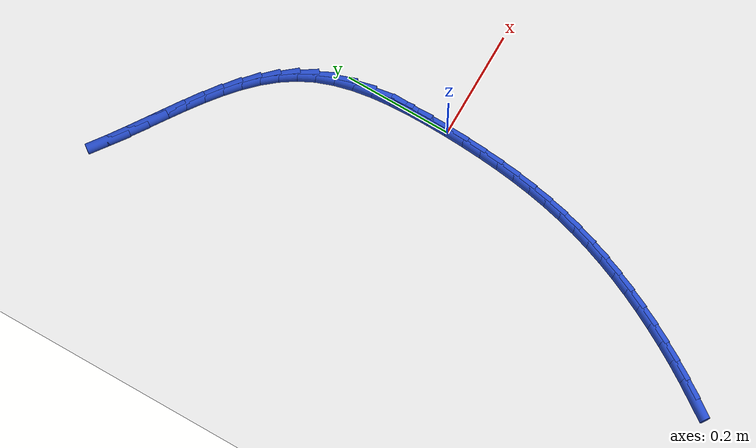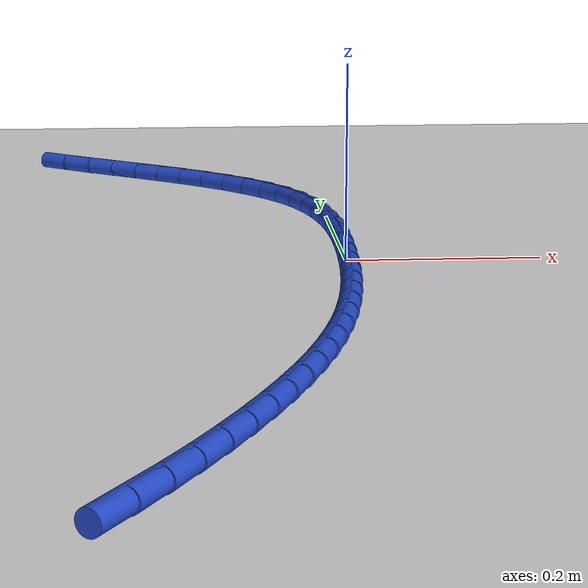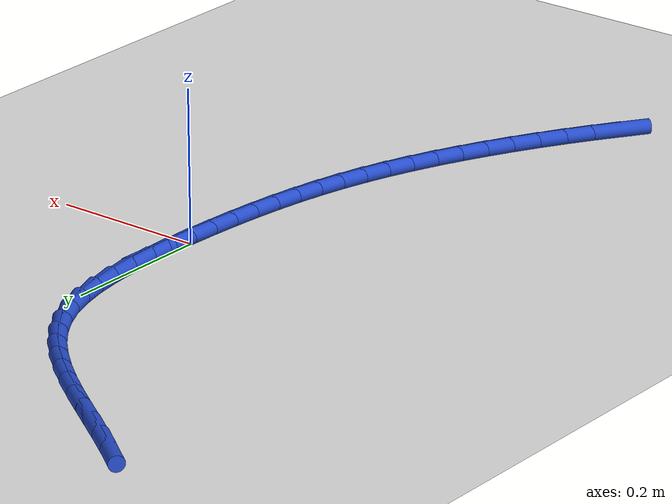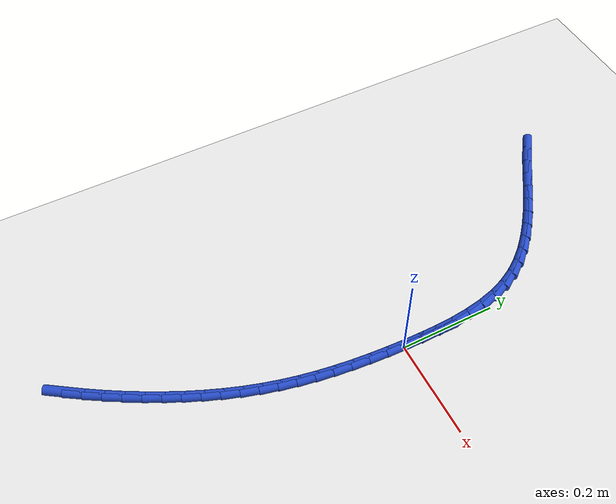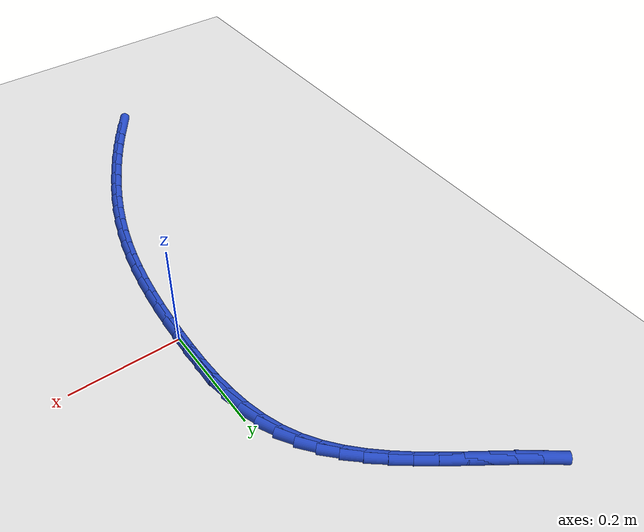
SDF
<sdf version="1.6">
 <world name="default">
  <model name="ground_plane">
   <static>1</static>
   <link name="link">
    <collision name="collision">
     <geometry><plane><normal>0 0 1</normal><size>100 100</size></plane></geometry>
     <surface><friction><ode><mu>100</mu><mu2>50</mu2></ode></friction></surface>
    </collision>
    <visual name="visual">
     <cast_shadows>0</cast_shadows>
     <geometry><plane><normal>0 0 1</normal><size>100 100</size></plane></geometry>
     <material>
      <script><uri>file://media/materials/scripts/gazebo.material</uri><name>Gazebo/WhiteGlow</name></script>
     </material>
    </visual>
   </link>
  </model>
  <model name="line">
   <link name="link_0">
    <pose>-5.421010862427522e-18 2.0816681711721685e-17 0.01 0 1.57 1.5466712468176664</pose>
    <collision name="collision">
     <geometry><cylinder><radius>0.01</radius><length>0.08</length></cylinder></geometry>
    </collision>
    <visual name="visual">
     <material>
      <script><name>Gazebo/Blue</name><uri>file://media/materials/scripts/gazebo.material</uri></script>
     </material>
     <geometry><cylinder><radius>0.01</radius><length>0.08</length></cylinder></geometry>
    </visual>
   </link>
   <link name="link_1">
    <pose>0.0009033576102911798 0.03743748609744156 0.01 0 1.57 -1.566262863615076</pose>
    <collision name="collision">
     <geometry><cylinder><radius>0.01</radius><length>0.08</length></cylinder></geometry>
    </collision>
    <visual name="visual">
     <material>
      <script><name>Gazebo/Blue</name><uri>file://media/materials/scripts/gazebo.material</uri></script>
     </material>
     <geometry><cylinder><radius>0.01</radius><length>0.08</length></cylinder></geometry>
    </visual>
   </link>
   <link name="link_2">
    <pose>0.000733105015284847 0.07499187264290075 0.01 0 1.57 -1.5266369364941925</pose>
    <collision name="collision">
     <geometry><cylinder><radius>0.01</radius><length>0.08</length></cylinder></geometry>
    </collision>
    <visual name="visual">
     <material>
      <script><name>Gazebo/Blue</name><uri>file://media/materials/scripts/gazebo.material</uri></script>
     </material>
     <geometry><cylinder><radius>0.01</radius><length>0.08</length></cylinder></geometry>
    </visual>
   </link>
   <link name="link_3">
    <pose>-0.0009137528515199373 0.11226112003020318 0.01 0 1.57 -1.4746947276949234</pose>
    <collision name="collision">
     <geometry><cylinder><radius>0.01</radius><length>0.08</length></cylinder></geometry>
    </collision>
    <visual name="visual">
     <material>
      <script><name>Gazebo/Blue</name><uri>file://media/materials/scripts/gazebo.material</uri></script>
     </material>
     <geometry><cylinder><radius>0.01</radius><length>0.08</length></cylinder></geometry>
    </visual>
   </link>
   <link name="link_4">
    <pose>-0.004440211056624108 0.14884318865317428 0.01 0 1.57 -1.4085664133884683</pose>
    <collision name="collision">
     <geometry><cylinder><radius>0.01</radius><length>0.08</length></cylinder></geometry>
    </collision>
    <visual name="visual">
     <material>
      <script><name>Gazebo/Blue</name><uri>file://media/materials/scripts/gazebo.material</uri></script>
     </material>
     <geometry><cylinder><radius>0.01</radius><length>0.08</length></cylinder></geometry>
    </visual>
   </link>
   <link name="link_5">
    <pose>-0.01024926466652859 0.18433603890563954 0.01 0 1.57 -1.3259769424873311</pose>
    <collision name="collision">
     <geometry><cylinder><radius>0.01</radius><length>0.08</length></cylinder></geometry>
    </collision>
    <visual name="visual">
     <material>
      <script><name>Gazebo/Blue</name><uri>file://media/materials/scripts/gazebo.material</uri></script>
     </material>
     <geometry><cylinder><radius>0.01</radius><length>0.08</length></cylinder></geometry>
    </visual>
   </link>
   <link name="link_6">
    <pose>-0.018743908747734336 0.21833763118142463 0.01 0 1.57 -1.2245724802127989</pose>
    <collision name="collision">
     <geometry><cylinder><radius>0.01</radius><length>0.08</length></cylinder></geometry>
    </collision>
    <visual name="visual">
     <material>
      <script><name>Gazebo/Blue</name><uri>file://media/materials/scripts/gazebo.material</uri></script>
     </material>
     <geometry><cylinder><radius>0.01</radius><length>0.08</length></cylinder></geometry>
    </visual>
   </link>
   <link name="link_7">
    <pose>-0.030327138366742258 0.250445925874355 0.01 0 1.57 -1.1046083328242908</pose>
    <collision name="collision">
     <geometry><cylinder><radius>0.01</radius><length>0.08</length></cylinder></geometry>
    </collision>
    <visual name="visual">
     <material>
      <script><name>Gazebo/Blue</name><uri>file://media/materials/scripts/gazebo.material</uri></script>
     </material>
     <geometry><cylinder><radius>0.01</radius><length>0.08</length></cylinder></geometry>
    </visual>
   </link>
   <link name="link_8">
    <pose>-0.04535105117831094 0.28030388315494703 0.01 0 1.57 -0.9855586680049778</pose>
    <collision name="collision">
     <geometry><cylinder><radius>0.01</radius><length>0.08</length></cylinder></geometry>
    </collision>
    <visual name="visual">
     <material>
      <script><name>Gazebo/Blue</name><uri>file://media/materials/scripts/gazebo.material</uri></script>
     </material>
     <geometry><cylinder><radius>0.01</radius><length>0.08</length></cylinder></geometry>
    </visual>
   </link>
   <link name="link_9">
    <pose>-0.06368960808677686 0.30797719681140423 0.01 0 1.57 -0.8811846184135992</pose>
    <collision name="collision">
     <geometry><cylinder><radius>0.01</radius><length>0.08</length></cylinder></geometry>
    </collision>
    <visual name="visual">
     <material>
      <script><name>Gazebo/Blue</name><uri>file://media/materials/scripts/gazebo.material</uri></script>
     </material>
     <geometry><cylinder><radius>0.01</radius><length>0.08</length></cylinder></geometry>
    </visual>
   </link>
   <link name="link_10">
    <pose>-0.08495484616576891 0.3337631345664068 0.01 0 1.57 -0.793667329842581</pose>
    <collision name="collision">
     <geometry><cylinder><radius>0.01</radius><length>0.08</length></cylinder></geometry>
    </collision>
    <visual name="visual">
     <material>
      <script><name>Gazebo/Blue</name><uri>file://media/materials/scripts/gazebo.material</uri></script>
     </material>
     <geometry><cylinder><radius>0.01</radius><length>0.08</length></cylinder></geometry>
    </visual>
   </link>
   <link name="link_11">
    <pose>-0.10875612143606747 0.3579613345338865 0.01 0 1.57 -0.723325552223975</pose>
    <collision name="collision">
     <geometry><cylinder><radius>0.01</radius><length>0.08</length></cylinder></geometry>
    </collision>
    <visual name="visual">
     <material>
      <script><name>Gazebo/Blue</name><uri>file://media/materials/scripts/gazebo.material</uri></script>
     </material>
     <geometry><cylinder><radius>0.01</radius><length>0.08</length></cylinder></geometry>
    </visual>
   </link>
   <link name="link_12">
    <pose>-0.13470278991845278 0.3808714348277745 0.01 0 1.57 -0.6694469561313541</pose>
    <collision name="collision">
     <geometry><cylinder><radius>0.01</radius><length>0.08</length></cylinder></geometry>
    </collision>
    <visual name="visual">
     <material>
      <script><name>Gazebo/Blue</name><uri>file://media/materials/scripts/gazebo.material</uri></script>
     </material>
     <geometry><cylinder><radius>0.01</radius><length>0.08</length></cylinder></geometry>
    </visual>
   </link>
   <link name="link_13">
    <pose>-0.16240420763370503 0.4027930735620022 0.01 0 1.57 -0.6309139708328828</pose>
    <collision name="collision">
     <geometry><cylinder><radius>0.01</radius><length>0.08</length></cylinder></geometry>
    </collision>
    <visual name="visual">
     <material>
      <script><name>Gazebo/Blue</name><uri>file://media/materials/scripts/gazebo.material</uri></script>
     </material>
     <geometry><cylinder><radius>0.01</radius><length>0.08</length></cylinder></geometry>
    </visual>
   </link>
   <link name="link_14">
    <pose>-0.19146973060260464 0.424025888850501 0.01 0 1.57 -0.6066107967727233</pose>
    <collision name="collision">
     <geometry><cylinder><radius>0.01</radius><length>0.08</length></cylinder></geometry>
    </collision>
    <visual name="visual">
     <material>
      <script><name>Gazebo/Blue</name><uri>file://media/materials/scripts/gazebo.material</uri></script>
     </material>
     <geometry><cylinder><radius>0.01</radius><length>0.08</length></cylinder></geometry>
    </visual>
   </link>
   <link name="link_15">
    <pose>-0.2215087148459318 0.4448695188072022 0.01 0 1.57 -0.5956399887724423</pose>
    <collision name="collision">
     <geometry><cylinder><radius>0.01</radius><length>0.08</length></cylinder></geometry>
    </collision>
    <visual name="visual">
     <material>
      <script><name>Gazebo/Blue</name><uri>file://media/materials/scripts/gazebo.material</uri></script>
     </material>
     <geometry><cylinder><radius>0.01</radius><length>0.08</length></cylinder></geometry>
    </visual>
   </link>
   <link name="link_16">
    <pose>-0.25213051638446693 0.46562360154603744 0.01 0 1.57 -0.5974134192479725</pose>
    <collision name="collision">
     <geometry><cylinder><radius>0.01</radius><length>0.08</length></cylinder></geometry>
    </collision>
    <visual name="visual">
     <material>
      <script><name>Gazebo/Blue</name><uri>file://media/materials/scripts/gazebo.material</uri></script>
     </material>
     <geometry><cylinder><radius>0.01</radius><length>0.08</length></cylinder></geometry>
    </visual>
   </link>
   <link name="link_17">
    <pose>-0.2829444912389901 0.4865877751809377 0.01 0 1.57 -0.6116690597869092</pose>
    <collision name="collision">
     <geometry><cylinder><radius>0.01</radius><length>0.08</length></cylinder></geometry>
    </collision>
    <visual name="visual">
     <material>
      <script><name>Gazebo/Blue</name><uri>file://media/materials/scripts/gazebo.material</uri></script>
     </material>
     <geometry><cylinder><radius>0.01</radius><length>0.08</length></cylinder></geometry>
    </visual>
   </link>
   <link name="link_18">
    <pose>-0.31355999543028185 0.5080616778258348 0.01 0 1.57 -0.6384406416458243</pose>
    <collision name="collision">
     <geometry><cylinder><radius>0.01</radius><length>0.08</length></cylinder></geometry>
    </collision>
    <visual name="visual">
     <material>
      <script><name>Gazebo/Blue</name><uri>file://media/materials/scripts/gazebo.material</uri></script>
     </material>
     <geometry><cylinder><radius>0.01</radius><length>0.08</length></cylinder></geometry>
    </visual>
   </link>
   <link name="link_222">
    <pose>-0.20199642550214472 -0.6097789677154125 0.01 0 1.57 0.9798252137316393</pose>
    <collision name="collision">
     <geometry><cylinder><radius>0.01</radius><length>0.08</length></cylinder></geometry>
    </collision>
    <visual name="visual">
     <material>
      <script><name>Gazebo/Blue</name><uri>file://media/materials/scripts/gazebo.material</uri></script>
     </material>
     <geometry><cylinder><radius>0.01</radius><length>0.08</length></cylinder></geometry>
    </visual>
   </link>
   <link name="link_223">
    <pose>-0.18105711667839583 -0.5785711247761395 0.01 0 1.57 1.010420890091721</pose>
    <collision name="collision">
     <geometry><cylinder><radius>0.01</radius><length>0.08</length></cylinder></geometry>
    </collision>
    <visual name="visual">
     <material>
      <script><name>Gazebo/Blue</name><uri>file://media/materials/scripts/gazebo.material</uri></script>
     </material>
     <geometry><cylinder><radius>0.01</radius><length>0.08</length></cylinder></geometry>
    </visual>
   </link>
   <link name="link_224">
    <pose>-0.1611380988247403 -0.5468262872298639 0.01 0 1.57 1.0390041856384598</pose>
    <collision name="collision">
     <geometry><cylinder><radius>0.01</radius><length>0.08</length></cylinder></geometry>
    </collision>
    <visual name="visual">
     <material>
      <script><name>Gazebo/Blue</name><uri>file://media/materials/scripts/gazebo.material</uri></script>
     </material>
     <geometry><cylinder><radius>0.01</radius><length>0.08</length></cylinder></geometry>
    </visual>
   </link>
   <link name="link_225">
    <pose>-0.1422349509451354 -0.514695940949933 0.01 0 1.57 1.0658927750645053</pose>
    <collision name="collision">
     <geometry><cylinder><radius>0.01</radius><length>0.08</length></cylinder></geometry>
    </collision>
    <visual name="visual">
     <material>
      <script><name>Gazebo/Blue</name><uri>file://media/materials/scripts/gazebo.material</uri></script>
     </material>
     <geometry><cylinder><radius>0.01</radius><length>0.08</length></cylinder></geometry>
    </visual>
   </link>
   <link name="link_226">
    <pose>-0.12434499682909318 -0.48232686822197846 0.01 0 1.57 1.0931869439282176</pose>
    <collision name="collision">
     <geometry><cylinder><radius>0.01</radius><length>0.08</length></cylinder></geometry>
    </collision>
    <visual name="visual">
     <material>
      <script><name>Gazebo/Blue</name><uri>file://media/materials/scripts/gazebo.material</uri></script>
     </material>
     <geometry><cylinder><radius>0.01</radius><length>0.08</length></cylinder></geometry>
    </visual>
   </link>
   <link name="link_227">
    <pose>-0.10749828774362363 -0.44977762469498445 0.01 0 1.57 1.1226635932482776</pose>
    <collision name="collision">
     <geometry><cylinder><radius>0.01</radius><length>0.08</length></cylinder></geometry>
    </collision>
    <visual name="visual">
     <material>
      <script><name>Gazebo/Blue</name><uri>file://media/materials/scripts/gazebo.material</uri></script>
     </material>
     <geometry><cylinder><radius>0.01</radius><length>0.08</length></cylinder></geometry>
    </visual>
   </link>
   <link name="link_228">
    <pose>-0.09175395209811862 -0.4170283799438532 0.01 0 1.57 1.1544048900918635</pose>
    <collision name="collision">
     <geometry><cylinder><radius>0.01</radius><length>0.08</length></cylinder></geometry>
    </collision>
    <visual name="visual">
     <material>
      <script><name>Gazebo/Blue</name><uri>file://media/materials/scripts/gazebo.material</uri></script>
     </material>
     <geometry><cylinder><radius>0.01</radius><length>0.08</length></cylinder></geometry>
    </visual>
   </link>
   <link name="link_229">
    <pose>-0.07717212981815108 -0.3840565767011697 0.01 0 1.57 1.188412351090158</pose>
    <collision name="collision">
     <geometry><cylinder><radius>0.01</radius><length>0.08</length></cylinder></geometry>
    </collision>
    <visual name="visual">
     <material>
      <script><name>Gazebo/Blue</name><uri>file://media/materials/scripts/gazebo.material</uri></script>
     </material>
     <geometry><cylinder><radius>0.01</radius><length>0.08</length></cylinder></geometry>
    </visual>
   </link>
   <link name="link_230">
    <pose>-0.06381296082929369 -0.3508396576995181 0.01 0 1.57 1.22466127409867</pose>
    <collision name="collision">
     <geometry><cylinder><radius>0.01</radius><length>0.08</length></cylinder></geometry>
    </collision>
    <visual name="visual">
     <material>
      <script><name>Gazebo/Blue</name><uri>file://media/materials/scripts/gazebo.material</uri></script>
     </material>
     <geometry><cylinder><radius>0.01</radius><length>0.08</length></cylinder></geometry>
    </visual>
   </link>
   <link name="link_231">
    <pose>-0.05173658505712023 -0.31735506567148486 0.01 0 1.57 1.2630955689396657</pose>
    <collision name="collision">
     <geometry><cylinder><radius>0.01</radius><length>0.08</length></cylinder></geometry>
    </collision>
    <visual name="visual">
     <material>
      <script><name>Gazebo/Blue</name><uri>file://media/materials/scripts/gazebo.material</uri></script>
     </material>
     <geometry><cylinder><radius>0.01</radius><length>0.08</length></cylinder></geometry>
    </visual>
   </link>
   <link name="link_232">
    <pose>-0.04100314242720327 -0.2835802433496541 0.01 0 1.57 1.3036076993439027</pose>
    <collision name="collision">
     <geometry><cylinder><radius>0.01</radius><length>0.08</length></cylinder></geometry>
    </collision>
    <visual name="visual">
     <material>
      <script><name>Gazebo/Blue</name><uri>file://media/materials/scripts/gazebo.material</uri></script>
     </material>
     <geometry><cylinder><radius>0.01</radius><length>0.08</length></cylinder></geometry>
    </visual>
   </link>
   <link name="link_233">
    <pose>-0.0316722091536039 -0.24949262153148102 0.01 0 1.57 1.3445523871863623</pose>
    <collision name="collision">
     <geometry><cylinder><radius>0.01</radius><length>0.08</length></cylinder></geometry>
    </collision>
    <visual name="visual">
     <material>
      <script><name>Gazebo/Blue</name><uri>file://media/materials/scripts/gazebo.material</uri></script>
     </material>
     <geometry><cylinder><radius>0.01</radius><length>0.08</length></cylinder></geometry>
    </visual>
   </link>
   <link name="link_234">
    <pose>-0.023748289996382156 -0.21506846501916316 0.01 0 1.57 1.3829376432454519</pose>
    <collision name="collision">
     <geometry><cylinder><radius>0.01</radius><length>0.08</length></cylinder></geometry>
    </collision>
    <visual name="visual">
     <material>
      <script><name>Gazebo/Blue</name><uri>file://media/materials/scripts/gazebo.material</uri></script>
     </material>
     <geometry><cylinder><radius>0.01</radius><length>0.08</length></cylinder></geometry>
    </visual>
   </link>
   <link name="link_235">
    <pose>-0.017135357870191287 -0.18028191011371555 0.01 0 1.57 1.4182267442778425</pose>
    <collision name="collision">
     <geometry><cylinder><radius>0.01</radius><length>0.08</length></cylinder></geometry>
    </collision>
    <visual name="visual">
     <material>
      <script><name>Gazebo/Blue</name><uri>file://media/materials/scripts/gazebo.material</uri></script>
     </material>
     <geometry><cylinder><radius>0.01</radius><length>0.08</length></cylinder></geometry>
    </visual>
   </link>
   <link name="link_236">
    <pose>-0.011726684126325581 -0.14510686653829452 0.01 0 1.57 1.4502487995165365</pose>
    <collision name="collision">
     <geometry><cylinder><radius>0.01</radius><length>0.08</length></cylinder></geometry>
    </collision>
    <visual name="visual">
     <material>
      <script><name>Gazebo/Blue</name><uri>file://media/materials/scripts/gazebo.material</uri></script>
     </material>
     <geometry><cylinder><radius>0.01</radius><length>0.08</length></cylinder></geometry>
    </visual>
   </link>
   <link name="link_237">
    <pose>-0.007415540116079311 -0.10951724401605623 0.01 0 1.57 1.47890166968073</pose>
    <collision name="collision">
     <geometry><cylinder><radius>0.01</radius><length>0.08</length></cylinder></geometry>
    </collision>
    <visual name="visual">
     <material>
      <script><name>Gazebo/Blue</name><uri>file://media/materials/scripts/gazebo.material</uri></script>
     </material>
     <geometry><cylinder><radius>0.01</radius><length>0.08</length></cylinder></geometry>
    </visual>
   </link>
   <link name="link_238">
    <pose>-0.004095197190746701 -0.07348695227015606 0.01 0 1.57 1.5041426806207119</pose>
    <collision name="collision">
     <geometry><cylinder><radius>0.01</radius><length>0.08</length></cylinder></geometry>
    </collision>
    <visual name="visual">
     <material>
      <script><name>Gazebo/Blue</name><uri>file://media/materials/scripts/gazebo.material</uri></script>
     </material>
     <geometry><cylinder><radius>0.01</radius><length>0.08</length></cylinder></geometry>
    </visual>
   </link>
   <link name="link_239">
    <pose>-0.0016589267016222 -0.03698990102375217 0.01 0 1.57 1.5259782611170931</pose>
    <collision name="collision">
     <geometry><cylinder><radius>0.01</radius><length>0.08</length></cylinder></geometry>
    </collision>
    <visual name="visual">
     <material>
      <script><name>Gazebo/Blue</name><uri>file://media/materials/scripts/gazebo.material</uri></script>
     </material>
     <geometry><cylinder><radius>0.01</radius><length>0.08</length></cylinder></geometry>
    </visual>
   </link>
   <link name="link_240">
    <pose>2.6020852139652106e-18 1.457167719820518e-16 0.01 0 1.57 1.544453658893712</pose>
    <collision name="collision">
     <geometry><cylinder><radius>0.01</radius><length>0.08</length></cylinder></geometry>
    </collision>
    <visual name="visual">
     <material>
      <script><name>Gazebo/Blue</name><uri>file://media/materials/scripts/gazebo.material</uri></script>
     </material>
     <geometry><cylinder><radius>0.01</radius><length>0.08</length></cylinder></geometry>
    </visual>
   </link>
   <link name="link_241">
    <pose>0.0009883115628256261 0.03750884107794462 0.01 0 1.57 1.559643520010992</pose>
    <collision name="collision">
     <geometry><cylinder><radius>0.01</radius><length>0.08</length></cylinder></geometry>
    </collision>
    <visual name="visual">
     <material>
      <script><name>Gazebo/Blue</name><uri>file://media/materials/scripts/gazebo.material</uri></script>
     </material>
     <geometry><cylinder><radius>0.01</radius><length>0.08</length></cylinder></geometry>
    </visual>
   </link>
   <link name="link_242">
    <pose>0.0014127366355603836 0.07556271248692495 0.01 0 1.57 1.5521022908482371</pose>
    <collision name="collision">
     <geometry><cylinder><radius>0.01</radius><length>0.08</length></cylinder></geometry>
    </collision>
    <visual name="visual">
     <material>
      <script><name>Gazebo/Blue</name><uri>file://media/materials/scripts/gazebo.material</uri></script>
     </material>
     <geometry><cylinder><radius>0.01</radius><length>0.08</length></cylinder></geometry>
    </visual>
   </link>
  </model>
 </world>
</sdf>
